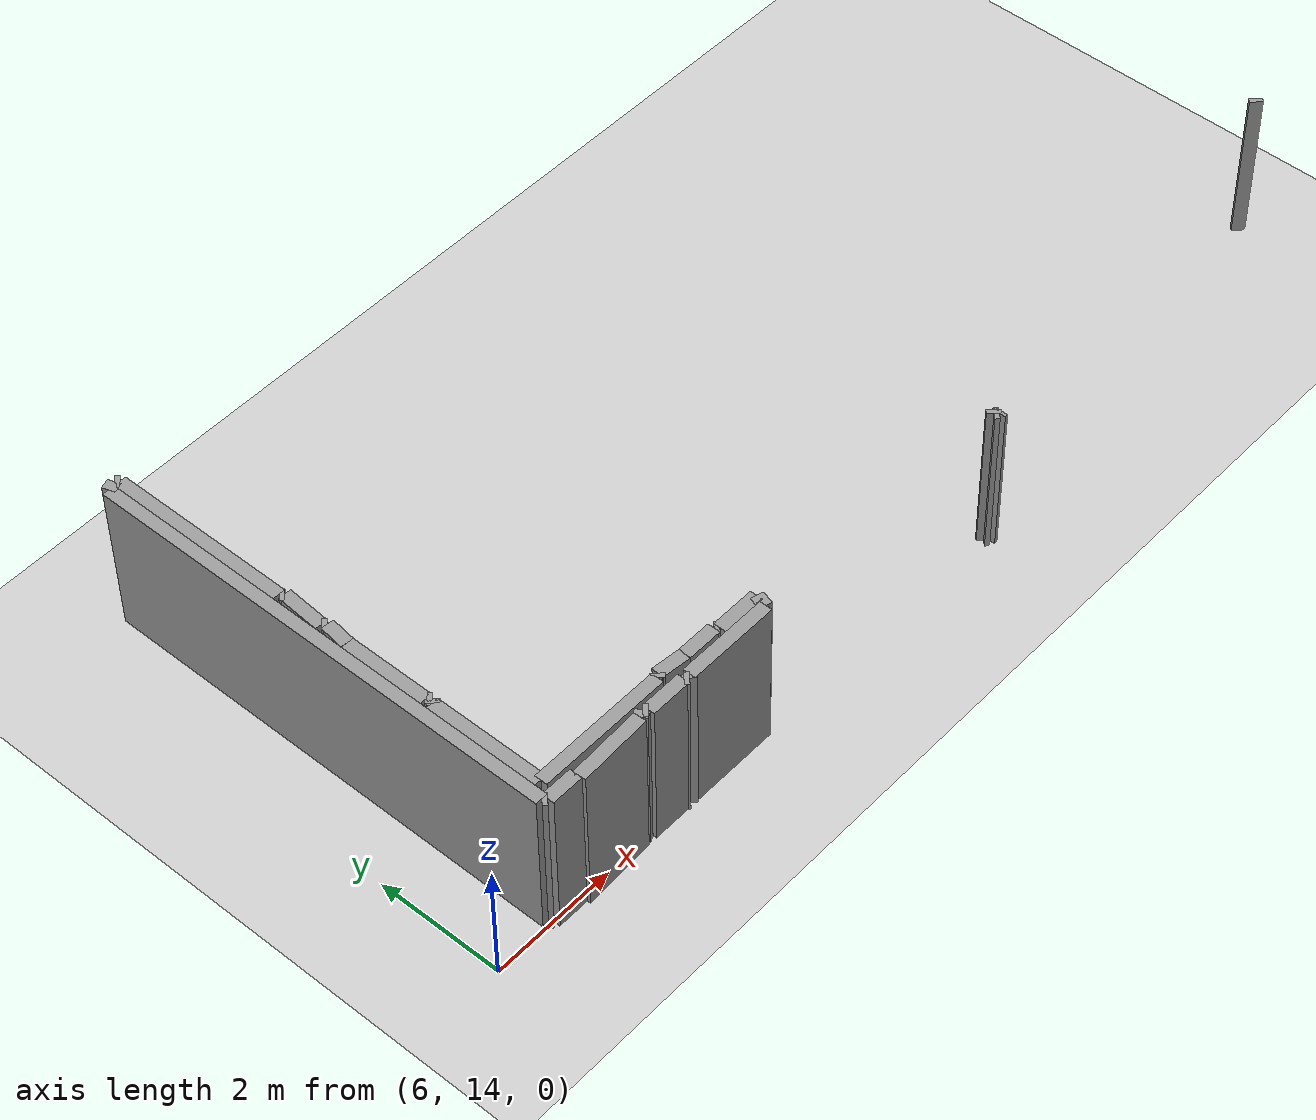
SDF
<sdf version="1.4">
 <world name="1_wall">
  <model name="ground_plane">
   <static>1</static>
   <link name="link">
    <collision name="collision">
     <geometry><plane><normal>0 0 1</normal><size>1000 1000</size></plane></geometry>
     <surface><friction><ode><mu>100</mu><mu2>50</mu2></ode></friction></surface>
    </collision>
    <visual name="visual">
     <cast_shadows>0</cast_shadows>
     <geometry><plane><normal>0 0 1</normal><size>10000 10000</size></plane></geometry>
     <material>
      <script><uri>file://media/materials/scripts/gazebo.material</uri><name>Gazebo/Grey</name></script>
     </material>
    </visual>
    <velocity_decay><linear>0</linear><angular>0</angular></velocity_decay>
   </link>
  </model>
  <model name="Wall_596">
   <static>1</static>
   <link name="Wall_596">
    <collision name="Wall_Collision_596">
     <geometry><box><size>0.0707106781186545 0.2 2.5</size></box></geometry>
     <pose>0 0 1.25 0 -0 0</pose>
    </collision>
    <visual name="Wall_Visual_596">
     <pose>0 0 1.25 0 -0 0</pose>
     <geometry><box><size>0.0707106781186545 0.2 2.5</size></box></geometry>
     <material>
      <script><uri>file://media/materials/scripts/gazebo.material</uri><name>Gazebo/Grey</name></script>
     </material>
    </visual>
    <velocity_decay><linear>0</linear><angular>0</angular></velocity_decay>
    <pose>22.675000000000004 14.875 0 0 0 -2.3561944901923626</pose>
   </link>
  </model>
  <model name="Wall_597">
   <static>1</static>
   <link name="Wall_597">
    <collision name="Wall_Collision_597">
     <geometry><box><size>0.049999999999998934 0.2 2.5</size></box></geometry>
     <pose>0 0 1.25 0 -0 0</pose>
    </collision>
    <visual name="Wall_Visual_597">
     <pose>0 0 1.25 0 -0 0</pose>
     <geometry><box><size>0.049999999999998934 0.2 2.5</size></box></geometry>
     <material>
      <script><uri>file://media/materials/scripts/gazebo.material</uri><name>Gazebo/Grey</name></script>
     </material>
    </visual>
    <velocity_decay><linear>0</linear><angular>0</angular></velocity_decay>
    <pose>7.5 13.975000000000001 0 0 0 -1.5707963267948966</pose>
   </link>
  </model>
  <model name="Wall_598">
   <static>1</static>
   <link name="Wall_598">
    <collision name="Wall_Collision_598">
     <geometry><box><size>1.1510864433221342 0.2 2.5</size></box></geometry>
     <pose>0 0 1.25 0 -0 0</pose>
    </collision>
    <visual name="Wall_Visual_598">
     <pose>0 0 1.25 0 -0 0</pose>
     <geometry><box><size>1.1510864433221342 0.2 2.5</size></box></geometry>
     <material>
      <script><uri>file://media/materials/scripts/gazebo.material</uri><name>Gazebo/Grey</name></script>
     </material>
    </visual>
    <velocity_decay><linear>0</linear><angular>0</angular></velocity_decay>
    <pose>8.075 13.975000000000001 0 0 0 0.0434508953915299</pose>
   </link>
  </model>
  <model name="Wall_599">
   <static>1</static>
   <link name="Wall_599">
    <collision name="Wall_Collision_599">
     <geometry><box><size>0.11180339887498948 0.2 2.5</size></box></geometry>
     <pose>0 0 1.25 0 -0 0</pose>
    </collision>
    <visual name="Wall_Visual_599">
     <pose>0 0 1.25 0 -0 0</pose>
     <geometry><box><size>0.11180339887498948 0.2 2.5</size></box></geometry>
     <material>
      <script><uri>file://media/materials/scripts/gazebo.material</uri><name>Gazebo/Grey</name></script>
     </material>
    </visual>
    <velocity_decay><linear>0</linear><angular>0</angular></velocity_decay>
    <pose>8.7 14.025 0 0 0 0.4636476090008132</pose>
   </link>
  </model>
  <model name="Wall_600">
   <static>1</static>
   <link name="Wall_600">
    <collision name="Wall_Collision_600">
     <geometry><box><size>0.07071067811865576 0.2 2.5</size></box></geometry>
     <pose>0 0 1.25 0 -0 0</pose>
    </collision>
    <visual name="Wall_Visual_600">
     <pose>0 0 1.25 0 -0 0</pose>
     <geometry><box><size>0.07071067811865576 0.2 2.5</size></box></geometry>
     <material>
      <script><uri>file://media/materials/scripts/gazebo.material</uri><name>Gazebo/Grey</name></script>
     </material>
    </visual>
    <velocity_decay><linear>0</linear><angular>0</angular></velocity_decay>
    <pose>8.775 14.025 0 0 0 -0.7853981633974483</pose>
   </link>
  </model>
  <model name="Wall_601">
   <static>1</static>
   <link name="Wall_601">
    <collision name="Wall_Collision_601">
     <geometry><box><size>0.6500000000000004 0.2 2.5</size></box></geometry>
     <pose>0 0 1.25 0 -0 0</pose>
    </collision>
    <visual name="Wall_Visual_601">
     <pose>0 0 1.25 0 -0 0</pose>
     <geometry><box><size>0.6500000000000004 0.2 2.5</size></box></geometry>
     <material>
      <script><uri>file://media/materials/scripts/gazebo.material</uri><name>Gazebo/Grey</name></script>
     </material>
    </visual>
    <velocity_decay><linear>0</linear><angular>0</angular></velocity_decay>
    <pose>9.125 14.0 0 0 0 0.0</pose>
   </link>
  </model>
  <model name="Wall_602">
   <static>1</static>
   <link name="Wall_602">
    <collision name="Wall_Collision_602">
     <geometry><box><size>0.07071067811865324 0.2 2.5</size></box></geometry>
     <pose>0 0 1.25 0 -0 0</pose>
    </collision>
    <visual name="Wall_Visual_602">
     <pose>0 0 1.25 0 -0 0</pose>
     <geometry><box><size>0.07071067811865324 0.2 2.5</size></box></geometry>
     <material>
      <script><uri>file://media/materials/scripts/gazebo.material</uri><name>Gazebo/Grey</name></script>
     </material>
    </visual>
    <velocity_decay><linear>0</linear><angular>0</angular></velocity_decay>
    <pose>9.475000000000001 13.975000000000001 0 0 0 -0.7853981633974483</pose>
   </link>
  </model>
  <model name="Wall_603">
   <static>1</static>
   <link name="Wall_603">
    <collision name="Wall_Collision_603">
     <geometry><box><size>0.0707106781186545 0.2 2.5</size></box></geometry>
     <pose>0 0 1.25 0 -0 0</pose>
    </collision>
    <visual name="Wall_Visual_603">
     <pose>0 0 1.25 0 -0 0</pose>
     <geometry><box><size>0.0707106781186545 0.2 2.5</size></box></geometry>
     <material>
      <script><uri>file://media/materials/scripts/gazebo.material</uri><name>Gazebo/Grey</name></script>
     </material>
    </visual>
    <velocity_decay><linear>0</linear><angular>0</angular></velocity_decay>
    <pose>9.525 13.975000000000001 0 0 0 0.7853981633974305</pose>
   </link>
  </model>
  <model name="Wall_604">
   <static>1</static>
   <link name="Wall_604">
    <collision name="Wall_Collision_604">
     <geometry><box><size>1.4499999999999993 0.2 2.5</size></box></geometry>
     <pose>0 0 1.25 0 -0 0</pose>
    </collision>
    <visual name="Wall_Visual_604">
     <pose>0 0 1.25 0 -0 0</pose>
     <geometry><box><size>1.4499999999999993 0.2 2.5</size></box></geometry>
     <material>
      <script><uri>file://media/materials/scripts/gazebo.material</uri><name>Gazebo/Grey</name></script>
     </material>
    </visual>
    <velocity_decay><linear>0</linear><angular>0</angular></velocity_decay>
    <pose>10.275 14.0 0 0 0 0.0</pose>
   </link>
  </model>
  <model name="Wall_605">
   <static>1</static>
   <link name="Wall_605">
    <collision name="Wall_Collision_605">
     <geometry><box><size>0.20615528128088423 0.2 2.5</size></box></geometry>
     <pose>0 0 1.25 0 -0 0</pose>
    </collision>
    <visual name="Wall_Visual_605">
     <pose>0 0 1.25 0 -0 0</pose>
     <geometry><box><size>0.20615528128088423 0.2 2.5</size></box></geometry>
     <material>
      <script><uri>file://media/materials/scripts/gazebo.material</uri><name>Gazebo/Grey</name></script>
     </material>
    </visual>
    <velocity_decay><linear>0</linear><angular>0</angular></velocity_decay>
    <pose>11.025 14.100000000000001 0 0 0 1.3258176636680303</pose>
   </link>
  </model>
  <model name="Wall_606">
   <static>1</static>
   <link name="Wall_606">
    <collision name="Wall_Collision_606">
     <geometry><box><size>0.6999999999999993 0.2 2.5</size></box></geometry>
     <pose>0 0 1.25 0 -0 0</pose>
    </collision>
    <visual name="Wall_Visual_606">
     <pose>0 0 1.25 0 -0 0</pose>
     <geometry><box><size>0.6999999999999993 0.2 2.5</size></box></geometry>
     <material>
      <script><uri>file://media/materials/scripts/gazebo.material</uri><name>Gazebo/Grey</name></script>
     </material>
    </visual>
    <velocity_decay><linear>0</linear><angular>0</angular></velocity_decay>
    <pose>10.700000000000001 14.200000000000001 0 0 0 3.141592653589793</pose>
   </link>
  </model>
  <model name="Wall_607">
   <static>1</static>
   <link name="Wall_607">
    <collision name="Wall_Collision_607">
     <geometry><box><size>0.0707106781186545 0.2 2.5</size></box></geometry>
     <pose>0 0 1.25 0 -0 0</pose>
    </collision>
    <visual name="Wall_Visual_607">
     <pose>0 0 1.25 0 -0 0</pose>
     <geometry><box><size>0.0707106781186545 0.2 2.5</size></box></geometry>
     <material>
      <script><uri>file://media/materials/scripts/gazebo.material</uri><name>Gazebo/Grey</name></script>
     </material>
    </visual>
    <velocity_decay><linear>0</linear><angular>0</angular></velocity_decay>
    <pose>10.325000000000001 14.225000000000001 0 0 0 2.3561944901923626</pose>
   </link>
  </model>
  <model name="Wall_608">
   <static>1</static>
   <link name="Wall_608">
    <collision name="Wall_Collision_608">
     <geometry><box><size>0.5500000000000007 0.2 2.5</size></box></geometry>
     <pose>0 0 1.25 0 -0 0</pose>
    </collision>
    <visual name="Wall_Visual_608">
     <pose>0 0 1.25 0 -0 0</pose>
     <geometry><box><size>0.5500000000000007 0.2 2.5</size></box></geometry>
     <material>
      <script><uri>file://media/materials/scripts/gazebo.material</uri><name>Gazebo/Grey</name></script>
     </material>
    </visual>
    <velocity_decay><linear>0</linear><angular>0</angular></velocity_decay>
    <pose>10.025 14.25 0 0 0 3.141592653589793</pose>
   </link>
  </model>
  <model name="Wall_609">
   <static>1</static>
   <link name="Wall_609">
    <collision name="Wall_Collision_609">
     <geometry><box><size>0.4527692569068702 0.2 2.5</size></box></geometry>
     <pose>0 0 1.25 0 -0 0</pose>
    </collision>
    <visual name="Wall_Visual_609">
     <pose>0 0 1.25 0 -0 0</pose>
     <geometry><box><size>0.4527692569068702 0.2 2.5</size></box></geometry>
     <material>
      <script><uri>file://media/materials/scripts/gazebo.material</uri><name>Gazebo/Grey</name></script>
     </material>
    </visual>
    <velocity_decay><linear>0</linear><angular>0</angular></velocity_decay>
    <pose>9.525 14.275 0 0 0 3.030935432415896</pose>
   </link>
  </model>
  <model name="Wall_610">
   <static>1</static>
   <link name="Wall_610">
    <collision name="Wall_Collision_610">
     <geometry><box><size>0.07071067811865576 0.2 2.5</size></box></geometry>
     <pose>0 0 1.25 0 -0 0</pose>
    </collision>
    <visual name="Wall_Visual_610">
     <pose>0 0 1.25 0 -0 0</pose>
     <geometry><box><size>0.07071067811865576 0.2 2.5</size></box></geometry>
     <material>
      <script><uri>file://media/materials/scripts/gazebo.material</uri><name>Gazebo/Grey</name></script>
     </material>
    </visual>
    <velocity_decay><linear>0</linear><angular>0</angular></velocity_decay>
    <pose>9.275 14.275 0 0 0 -2.356194490192345</pose>
   </link>
  </model>
  <model name="Wall_611">
   <static>1</static>
   <link name="Wall_611">
    <collision name="Wall_Collision_611">
     <geometry><box><size>2.0999999999999996 0.2 2.5</size></box></geometry>
     <pose>0 0 1.25 0 -0 0</pose>
    </collision>
    <visual name="Wall_Visual_611">
     <pose>0 0 1.25 0 -0 0</pose>
     <geometry><box><size>2.0999999999999996 0.2 2.5</size></box></geometry>
     <material>
      <script><uri>file://media/materials/scripts/gazebo.material</uri><name>Gazebo/Grey</name></script>
     </material>
    </visual>
    <velocity_decay><linear>0</linear><angular>0</angular></velocity_decay>
    <pose>8.2 14.25 0 0 0 3.141592653589793</pose>
   </link>
  </model>
  <model name="Wall_612">
   <static>1</static>
   <link name="Wall_612">
    <collision name="Wall_Collision_612">
     <geometry><box><size>1.8000000000000007 0.2 2.5</size></box></geometry>
     <pose>0 0 1.25 0 -0 0</pose>
    </collision>
    <visual name="Wall_Visual_612">
     <pose>0 0 1.25 0 -0 0</pose>
     <geometry><box><size>1.8000000000000007 0.2 2.5</size></box></geometry>
     <material>
      <script><uri>file://media/materials/scripts/gazebo.material</uri><name>Gazebo/Grey</name></script>
     </material>
    </visual>
    <velocity_decay><linear>0</linear><angular>0</angular></velocity_decay>
    <pose>7.15 15.15 0 0 0 1.5707963267948966</pose>
   </link>
  </model>
  <model name="Wall_613">
   <static>1</static>
   <link name="Wall_613">
    <collision name="Wall_Collision_613">
     <geometry><box><size>0.07071067811865513 0.2 2.5</size></box></geometry>
     <pose>0 0 1.25 0 -0 0</pose>
    </collision>
    <visual name="Wall_Visual_613">
     <pose>0 0 1.25 0 -0 0</pose>
     <geometry><box><size>0.07071067811865513 0.2 2.5</size></box></geometry>
     <material>
      <script><uri>file://media/materials/scripts/gazebo.material</uri><name>Gazebo/Grey</name></script>
     </material>
    </visual>
    <velocity_decay><linear>0</linear><angular>0</angular></velocity_decay>
    <pose>7.175000000000001 16.075000000000003 0 0 0 0.7853981633974572</pose>
   </link>
  </model>
  <model name="Wall_614">
   <static>1</static>
   <link name="Wall_614">
    <collision name="Wall_Collision_614">
     <geometry><box><size>0.07071067811865513 0.2 2.5</size></box></geometry>
     <pose>0 0 1.25 0 -0 0</pose>
    </collision>
    <visual name="Wall_Visual_614">
     <pose>0 0 1.25 0 -0 0</pose>
     <geometry><box><size>0.07071067811865513 0.2 2.5</size></box></geometry>
     <material>
      <script><uri>file://media/materials/scripts/gazebo.material</uri><name>Gazebo/Grey</name></script>
     </material>
    </visual>
    <velocity_decay><linear>0</linear><angular>0</angular></velocity_decay>
    <pose>7.175000000000001 16.125 0 0 0 2.356194490192336</pose>
   </link>
  </model>
  <model name="Wall_615">
   <static>1</static>
   <link name="Wall_615">
    <collision name="Wall_Collision_615">
     <geometry><box><size>1.3499999999999979 0.2 2.5</size></box></geometry>
     <pose>0 0 1.25 0 -0 0</pose>
    </collision>
    <visual name="Wall_Visual_615">
     <pose>0 0 1.25 0 -0 0</pose>
     <geometry><box><size>1.3499999999999979 0.2 2.5</size></box></geometry>
     <material>
      <script><uri>file://media/materials/scripts/gazebo.material</uri><name>Gazebo/Grey</name></script>
     </material>
    </visual>
    <velocity_decay><linear>0</linear><angular>0</angular></velocity_decay>
    <pose>7.15 16.825000000000003 0 0 0 1.5707963267948966</pose>
   </link>
  </model>
  <model name="Wall_616">
   <static>1</static>
   <link name="Wall_616">
    <collision name="Wall_Collision_616">
     <geometry><box><size>0.40311288741492957 0.2 2.5</size></box></geometry>
     <pose>0 0 1.25 0 -0 0</pose>
    </collision>
    <visual name="Wall_Visual_616">
     <pose>0 0 1.25 0 -0 0</pose>
     <geometry><box><size>0.40311288741492957 0.2 2.5</size></box></geometry>
     <material>
      <script><uri>file://media/materials/scripts/gazebo.material</uri><name>Gazebo/Grey</name></script>
     </material>
    </visual>
    <velocity_decay><linear>0</linear><angular>0</angular></velocity_decay>
    <pose>7.175000000000001 17.700000000000003 0 0 0 1.4464413322481362</pose>
   </link>
  </model>
  <model name="Wall_617">
   <static>1</static>
   <link name="Wall_617">
    <collision name="Wall_Collision_617">
     <geometry><box><size>0.07071067811865261 0.2 2.5</size></box></geometry>
     <pose>0 0 1.25 0 -0 0</pose>
    </collision>
    <visual name="Wall_Visual_617">
     <pose>0 0 1.25 0 -0 0</pose>
     <geometry><box><size>0.07071067811865261 0.2 2.5</size></box></geometry>
     <material>
      <script><uri>file://media/materials/scripts/gazebo.material</uri><name>Gazebo/Grey</name></script>
     </material>
    </visual>
    <velocity_decay><linear>0</linear><angular>0</angular></velocity_decay>
    <pose>7.175000000000001 17.925 0 0 0 2.3561944901923715</pose>
   </link>
  </model>
  <model name="Wall_618">
   <static>1</static>
   <link name="Wall_618">
    <collision name="Wall_Collision_618">
     <geometry><box><size>0.7017834423809128 0.2 2.5</size></box></geometry>
     <pose>0 0 1.25 0 -0 0</pose>
    </collision>
    <visual name="Wall_Visual_618">
     <pose>0 0 1.25 0 -0 0</pose>
     <geometry><box><size>0.7017834423809128 0.2 2.5</size></box></geometry>
     <material>
      <script><uri>file://media/materials/scripts/gazebo.material</uri><name>Gazebo/Grey</name></script>
     </material>
    </visual>
    <velocity_decay><linear>0</linear><angular>0</angular></velocity_decay>
    <pose>7.175000000000001 18.3 0 0 0 1.4994888620096067</pose>
   </link>
  </model>
  <model name="Wall_619">
   <static>1</static>
   <link name="Wall_619">
    <collision name="Wall_Collision_619">
     <geometry><box><size>0.07071067811865261 0.2 2.5</size></box></geometry>
     <pose>0 0 1.25 0 -0 0</pose>
    </collision>
    <visual name="Wall_Visual_619">
     <pose>0 0 1.25 0 -0 0</pose>
     <geometry><box><size>0.07071067811865261 0.2 2.5</size></box></geometry>
     <material>
      <script><uri>file://media/materials/scripts/gazebo.material</uri><name>Gazebo/Grey</name></script>
     </material>
    </visual>
    <velocity_decay><linear>0</linear><angular>0</angular></velocity_decay>
    <pose>7.175000000000001 18.675 0 0 0 2.3561944901923715</pose>
   </link>
  </model>
  <model name="Wall_620">
   <static>1</static>
   <link name="Wall_620">
    <collision name="Wall_Collision_620">
     <geometry><box><size>2.900000000000002 0.2 2.5</size></box></geometry>
     <pose>0 0 1.25 0 -0 0</pose>
    </collision>
    <visual name="Wall_Visual_620">
     <pose>0 0 1.25 0 -0 0</pose>
     <geometry><box><size>2.900000000000002 0.2 2.5</size></box></geometry>
     <material>
      <script><uri>file://media/materials/scripts/gazebo.material</uri><name>Gazebo/Grey</name></script>
     </material>
    </visual>
    <velocity_decay><linear>0</linear><angular>0</angular></velocity_decay>
    <pose>7.15 20.15 0 0 0 1.5707963267948966</pose>
   </link>
  </model>
  <model name="Wall_621">
   <static>1</static>
   <link name="Wall_621">
    <collision name="Wall_Collision_621">
     <geometry><box><size>0.07071067811865513 0.2 2.5</size></box></geometry>
     <pose>0 0 1.25 0 -0 0</pose>
    </collision>
    <visual name="Wall_Visual_621">
     <pose>0 0 1.25 0 -0 0</pose>
     <geometry><box><size>0.07071067811865513 0.2 2.5</size></box></geometry>
     <material>
      <script><uri>file://media/materials/scripts/gazebo.material</uri><name>Gazebo/Grey</name></script>
     </material>
    </visual>
    <velocity_decay><linear>0</linear><angular>0</angular></velocity_decay>
    <pose>7.125 21.625 0 0 0 2.356194490192336</pose>
   </link>
  </model>
  <model name="Wall_622">
   <static>1</static>
   <link name="Wall_622">
    <collision name="Wall_Collision_622">
     <geometry><box><size>0.15811388300841953 0.2 2.5</size></box></geometry>
     <pose>0 0 1.25 0 -0 0</pose>
    </collision>
    <visual name="Wall_Visual_622">
     <pose>0 0 1.25 0 -0 0</pose>
     <geometry><box><size>0.15811388300841953 0.2 2.5</size></box></geometry>
     <material>
      <script><uri>file://media/materials/scripts/gazebo.material</uri><name>Gazebo/Grey</name></script>
     </material>
    </visual>
    <velocity_decay><linear>0</linear><angular>0</angular></velocity_decay>
    <pose>7.025 21.625 0 0 0 -2.8198420991931474</pose>
   </link>
  </model>
  <model name="Wall_623">
   <static>1</static>
   <link name="Wall_623">
    <collision name="Wall_Collision_623">
     <geometry><box><size>7.550000000000001 0.2 2.5</size></box></geometry>
     <pose>0 0 1.25 0 -0 0</pose>
    </collision>
    <visual name="Wall_Visual_623">
     <pose>0 0 1.25 0 -0 0</pose>
     <geometry><box><size>7.550000000000001 0.2 2.5</size></box></geometry>
     <material>
      <script><uri>file://media/materials/scripts/gazebo.material</uri><name>Gazebo/Grey</name></script>
     </material>
    </visual>
    <velocity_decay><linear>0</linear><angular>0</angular></velocity_decay>
    <pose>6.95 17.825000000000003 0 0 0 -1.5707963267948966</pose>
   </link>
  </model>
  <model name="Wall_624">
   <static>1</static>
   <link name="Wall_624">
    <collision name="Wall_Collision_624">
     <geometry><box><size>0.07071067811865513 0.2 2.5</size></box></geometry>
     <pose>0 0 1.25 0 -0 0</pose>
    </collision>
    <visual name="Wall_Visual_624">
     <pose>0 0 1.25 0 -0 0</pose>
     <geometry><box><size>0.07071067811865513 0.2 2.5</size></box></geometry>
     <material>
      <script><uri>file://media/materials/scripts/gazebo.material</uri><name>Gazebo/Grey</name></script>
     </material>
    </visual>
    <velocity_decay><linear>0</linear><angular>0</angular></velocity_decay>
    <pose>6.975 14.025 0 0 0 -0.7853981633974572</pose>
   </link>
  </model>
  <model name="Wall_625">
   <static>1</static>
   <link name="Wall_625">
    <collision name="Wall_Collision_625">
     <geometry><box><size>0.5 0.2 2.5</size></box></geometry>
     <pose>0 0 1.25 0 -0 0</pose>
    </collision>
    <visual name="Wall_Visual_625">
     <pose>0 0 1.25 0 -0 0</pose>
     <geometry><box><size>0.5 0.2 2.5</size></box></geometry>
     <material>
      <script><uri>file://media/materials/scripts/gazebo.material</uri><name>Gazebo/Grey</name></script>
     </material>
    </visual>
    <velocity_decay><linear>0</linear><angular>0</angular></velocity_decay>
    <pose>7.25 14.0 0 0 0 0.0</pose>
   </link>
  </model>
  <model name="Wall_626">
   <static>1</static>
   <link name="Wall_626">
    <collision name="Wall_Collision_626">
     <geometry><box><size>0.0707106781186545 0.2 2.5</size></box></geometry>
     <pose>0 0 1.25 0 -0 0</pose>
    </collision>
    <visual name="Wall_Visual_626">
     <pose>0 0 1.25 0 -0 0</pose>
     <geometry><box><size>0.0707106781186545 0.2 2.5</size></box></geometry>
     <material>
      <script><uri>file://media/materials/scripts/gazebo.material</uri><name>Gazebo/Grey</name></script>
     </material>
    </visual>
    <velocity_decay><linear>0</linear><angular>0</angular></velocity_decay>
    <pose>15.475000000000001 13.925 0 0 0 -2.356194490192327</pose>
   </link>
  </model>
  <model name="Wall_627">
   <static>1</static>
   <link name="Wall_627">
    <collision name="Wall_Collision_627">
     <geometry><box><size>0.07071067811865324 0.2 2.5</size></box></geometry>
     <pose>0 0 1.25 0 -0 0</pose>
    </collision>
    <visual name="Wall_Visual_627">
     <pose>0 0 1.25 0 -0 0</pose>
     <geometry><box><size>0.07071067811865324 0.2 2.5</size></box></geometry>
     <material>
      <script><uri>file://media/materials/scripts/gazebo.material</uri><name>Gazebo/Grey</name></script>
     </material>
    </visual>
    <velocity_decay><linear>0</linear><angular>0</angular></velocity_decay>
    <pose>15.475000000000001 13.875 0 0 0 -0.7853981633974483</pose>
   </link>
  </model>
  <model name="Wall_628">
   <static>1</static>
   <link name="Wall_628">
    <collision name="Wall_Collision_628">
     <geometry><box><size>0.05000000000000071 0.2 2.5</size></box></geometry>
     <pose>0 0 1.25 0 -0 0</pose>
    </collision>
    <visual name="Wall_Visual_628">
     <pose>0 0 1.25 0 -0 0</pose>
     <geometry><box><size>0.05000000000000071 0.2 2.5</size></box></geometry>
     <material>
      <script><uri>file://media/materials/scripts/gazebo.material</uri><name>Gazebo/Grey</name></script>
     </material>
    </visual>
    <velocity_decay><linear>0</linear><angular>0</angular></velocity_decay>
    <pose>15.525 13.850000000000001 0 0 0 0.0</pose>
   </link>
  </model>
 </world>
</sdf>
